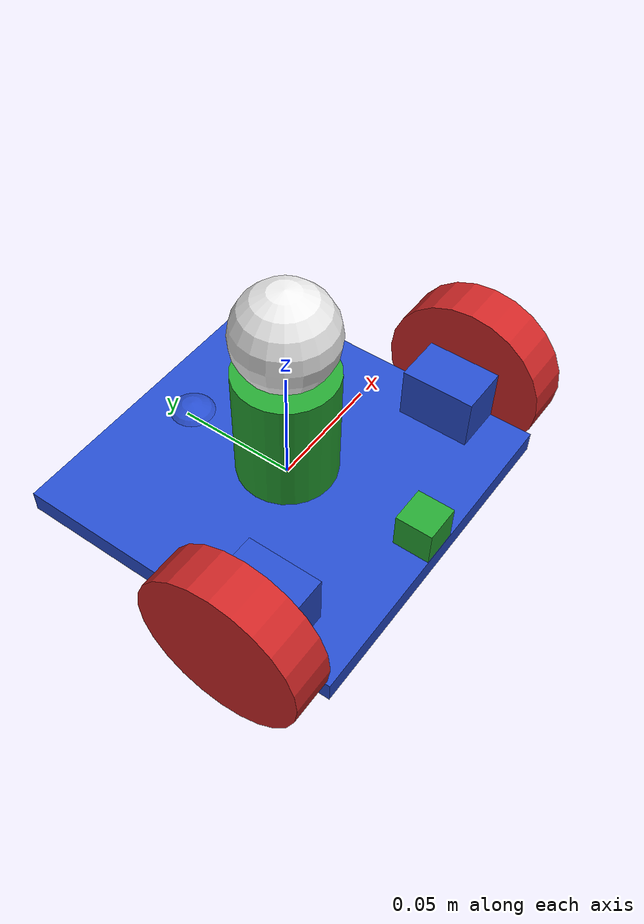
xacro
<?xml version="1.0" ?>

<robot name="robot_with_sensors" xmlns:xacro="https://www.ros.org/wiki/xacro" >

  <xacro:include filename="$(find part2_robot_descriptions)/urdf/robot_with_sensors_materials.xacro" />
  <xacro:include filename="$(find part2_robot_descriptions)/urdf/robot_with_sensors.gazebo" />

  <!-- ========================== Chassis definition ======================== -->
  <link name="link_chassis">

    <pose>0 0 0.0175 0 0 0</pose>

    <!-- %%%%%%%%%%%%%%%%%%%%%%%% Chassis definition %%%%%%%%%%%%%%%%%%%%%%%% -->
    <visual>
      <origin rpy="0 0 0" xyz="0 0 0"/>
      <geometry>
        <box size="0.136 0.136 0.009"/>
      </geometry>
      <material name="blue"/>
    </visual>

    <collision name="collision_chassis">
      <geometry>
        <box size="0.136 0.136 0.009"/>
      </geometry>
    </collision>

    <inertial name="inertial_chassis">
      <mass value="0.150"/>
      <origin rpy="0 0 0" xyz="0 0 0"/>
      <inertia ixx="0.00033245" ixy="0" ixz="0" iyy="0.00033245" iyz="0" izz="0.0004624"/>
    </inertial>

    <!-- %%%%%%%%%%%%%%%%%%%%%%%% Motor on the left %%%%%%%%%%%%%%%%%%%%%%%% -->
    <visual>
      <origin rpy="0 0 0" xyz="-0.058 -0.035 0.0155"/>
      <geometry>
        <box size="0.020 0.030 0.022"/>
      </geometry>
      <material name="blue"/>
    </visual>

    <collision name="collision_motor_left">
      <origin rpy="0 0 0" xyz="-0.058 -0.035 0.0155"/>
      <geometry>
        <box size="0.020 0.030 0.022"/>
      </geometry>
    </collision>

    <inertial name="inertial_motor_left">
      <mass value="0.082"/>
      <origin rpy="0 0 0" xyz="0 0 0"/>
      <inertia ixx="0.000009457" ixy="0" ixz="0" iyy="0.000006041" iyz="0" izz="0.000008883"/>
    </inertial>

    <!-- %%%%%%%%%%%%%%%%%%%%%%%% Motor on the right %%%%%%%%%%%%%%%%%%%%%%%% -->
    <visual>
      <origin rpy="0 0 0" xyz="0.058 -0.035 0.0155"/>
      <geometry>
        <box size="0.020 0.030 0.022"/>
      </geometry>
      <material name="blue"/>
    </visual>

    <collision name="collision_motor_right">
      <origin rpy="0 0 0" xyz="0.058 -0.035 0.0155"/>
      <geometry>
        <box size="0.020 0.030 0.022"/>
      </geometry>
    </collision>

    <inertial name="inertial_motor_right">
      <mass value="0.082"/>
      <origin rpy="0 0 0" xyz="0 0 0"/>
      <inertia ixx="0.000009457" ixy="0" ixz="0" iyy="0.000006041" iyz="0" izz="0.000008883"/>
    </inertial>

    <!-- %%%%%%%%%%%%%%%%%%%%%%%% Caster %%%%%%%%%%%%%%%%%%%%%%%% -->
    <visual>
      <origin rpy=" 0 0 0" xyz="0 0.047 -0.0045"/>
      <geometry>
        <sphere radius="0.013"/>
      </geometry>
      <material name="blue"/>
    </visual>

    <collision name="collision_caster">
      <origin rpy=" 0 0 0" xyz="0 0.047 -0.0045"/>
      <geometry>
        <sphere radius="0.013"/>
      </geometry>
      <surface>
        <friction>
          <ode>
            <mu>0</mu>
            <mu2>0</mu2>
            <slip1>1.0</slip1>
            <slip2>1.0</slip2>
          </ode>
        </friction>
      </surface>
    </collision>

    <!-- %%%%%%%%%%%%%%%%%%%%%%%% LASER support %%%%%%%%%%%%%%%%%%%%% -->
    <visual>
      <origin rpy="0 0 0" xyz="0 0 0.0295"/>
      <geometry>
        <cylinder length="0.05" radius="0.02"/>
      </geometry>
      <material name="green"/>
    </visual>

    <collision name="collision_lds_chassis">
      <origin rpy="0 0 0" xyz="0 0 0.0295"/>
      <geometry>
        <cylinder length="0.05" radius="0.02"/>
      </geometry>
    </collision>

  </link>

  <!-- ======================= Right wheel definition =================== -->
  <link name="link_right_wheel">

    <visual>
      <origin rpy="0 1.5707 0" xyz="0 0 0"/>
      <geometry>
        <cylinder length="0.018" radius="0.033"/>
      </geometry>
      <material name="red"/>
    </visual>

    <collision name="collision_right_wheel">
      <origin rpy="0 1.5707 0" xyz="0 0 0"/>
      <geometry>
        <cylinder length="0.018" radius="0.033"/>
      </geometry>
    </collision>

    <inertial name="inertial_right_wheel">
      <mass value="0.120"/>
      <origin rpy="0 1.5707 0" xyz="0 0 0"/>
      <inertia ixx="0.03109224" ixy="0" ixz="0" iyy="0.03109224" iyz="0" izz="0.00006534"/>
    </inertial>

  </link>

  <!-- %%%%%%%%%  Joint for right wheel  %%%%%%%%% -->
  <joint name="joint_right_wheel" type="continuous">
    <origin rpy="0 0 0" xyz="-0.077 -0.035 0.0155"/>
    <child link="link_right_wheel" />
    <parent link="link_chassis"/>
    <axis rpy="0 0 0" xyz="1 0 0"/>
    <limit effort="10000" velocity="1000"/>
    <joint_properties damping="1.0" friction="1.0" />
  </joint>

  <!-- ======================= Left wheel definition =================== -->
  <link name="link_left_wheel">

    <visual>
      <origin rpy="0 1.5707 0" xyz="0 0 0"/>
      <geometry>
        <cylinder length="0.018" radius="0.033"/>
      </geometry>
      <material name="red"/>
    </visual>

    <collision name="collision_left_wheel">
      <origin rpy="0 1.5707 0" xyz="0 0 0"/>
      <geometry>
        <cylinder length="0.018" radius="0.033"/>
      </geometry>
    </collision>

    <inertial name="inertial_left_wheel">
      <mass value="0.120"/>
      <origin rpy="0 1.5707 0" xyz="0 0 0"/>
      <inertia ixx="0.03109224" ixy="0" ixz="0" iyy="0.03109224" iyz="0" izz="0.00006534"/>
    </inertial>
  </link>

  <!-- %%%%%%%%%  Joint for left wheel  %%%%%%%%% -->
  <joint name="joint_left_wheel" type="continuous">
    <origin rpy="0 0 0" xyz="0.077 -0.035 0.0155"/>
    <child link="link_left_wheel" />
    <parent link="link_chassis"/>
    <axis rpy="0 0 0" xyz="1 0 0"/>
    <limit effort="10000" velocity="1000"/>
    <joint_properties damping="1.0" friction="1.0" />
  </joint>

  <!-- %%%%%%%%%%%%%%%%%%%%%%%% LIDAR SENSOR DEFINITION %%%%%%%%%%%%%%%%%%%%%%%% -->
  <link name="link_lds">

    <visual>
      <origin rpy="0 0 0" xyz="0 0 0.042"/>
      <geometry>
        <sphere length="0.008" radius="0.02"/>
      </geometry>
      <material name="white"/>
    </visual>

    <collision name="collision_lds">
      <origin rpy="0 0 0" xyz="0 0 0.0295"/>
      <geometry>
        <sphere length="0.008" radius="0.03"/>
      </geometry>
    </collision>

    <inertial name="inertial_lds">
      <mass value="0.020"/>
      <origin rpy="0 0 0" xyz="0 0 0.0295"/>
      <inertia ixx="0.03109224" ixy="0" ixz="0" iyy="0.03109224" iyz="0" izz="0.00006534"/>
    </inertial>

  </link>

  <!-- %%%%%%%%%  Joint for LIDAR SENSOR %%%%%%%%% -->
  <joint name="joint_lds" type="continuous">
    <origin rpy="0 0 0" xyz="0 0 0.0295"/>
    <child link="link_lds" />
    <parent link="link_chassis"/>
    <axis rpy="0 0 0" xyz="0 0 0.0295"/>
    <limit effort="10000" velocity="1000"/>
    <joint_properties damping="1.0" friction="1.0" />
  </joint>

  <!-- ======================= Camera definition =================== -->
  <link name="link_camera">
    <visual>
      <origin rpy="0 0 0" xyz="0 0 0"/>
      <geometry>
        <box size="0.015 0.015 0.015"/>
      </geometry>
      <material name="green"/>
    </visual>

    <collision name="collision_camera_chassis">
      <origin rpy="0 0 0" xyz="0 0 0"/>
      <geometry>
        <box size="0.015 0.015 0.015"/>
      </geometry>
    </collision>

  </link>

  <!-- %%%%%%%%%  Joint for camera  %%%%%%%%% -->
  <joint name="joint_camera" type="fixed">
    <origin rpy="0 0 -1.5707" xyz="0 -0.0605 0.0125"/>
    <child link="link_camera" />
    <parent link="link_chassis"/>
  </joint>

</robot>
